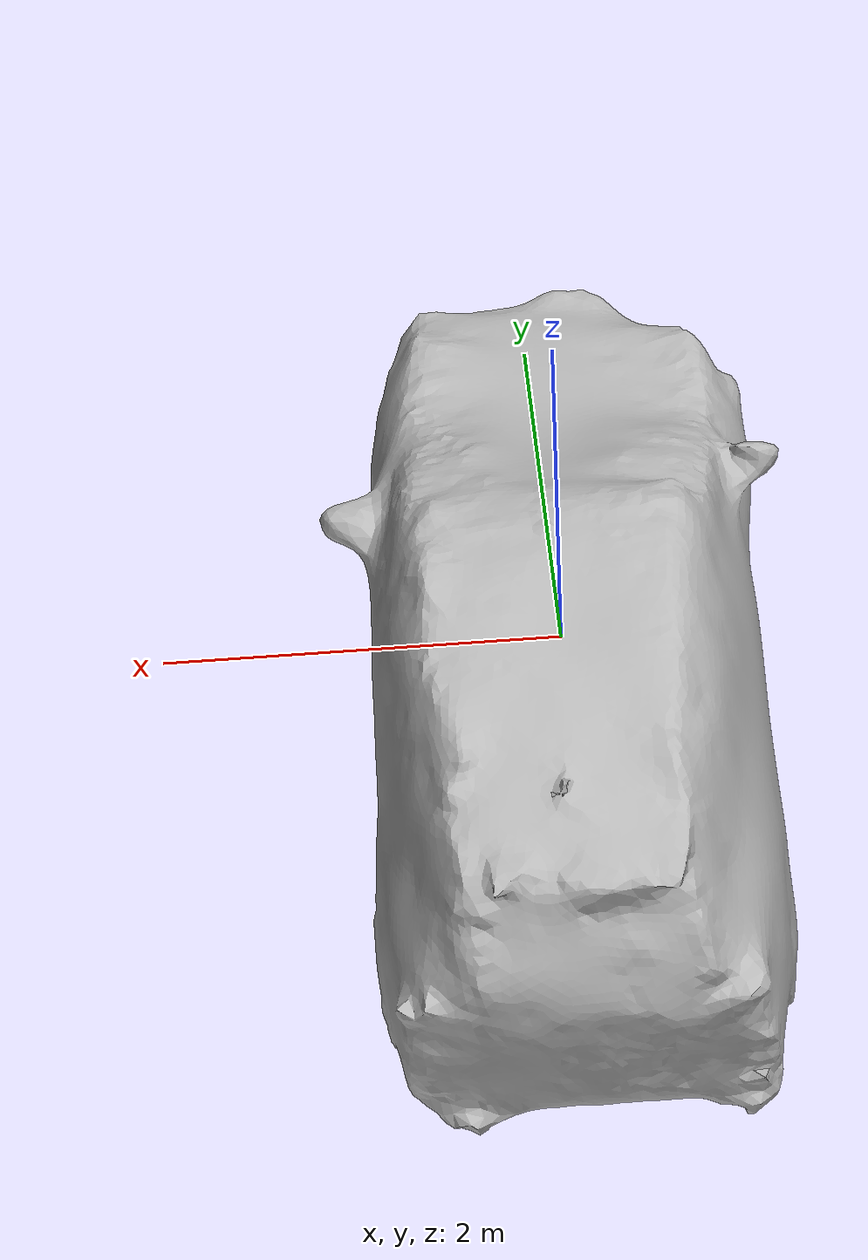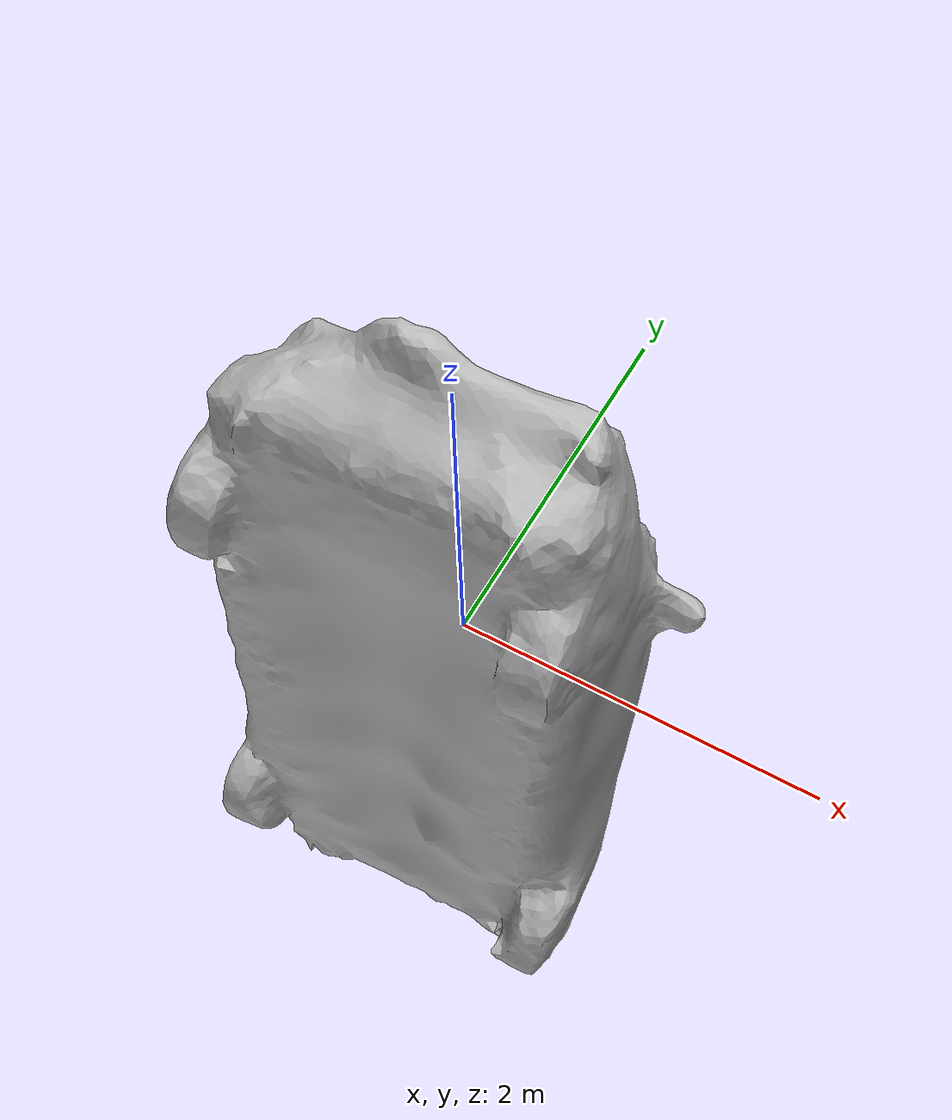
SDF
<?xml version="1.0" ?>
<sdf version="1.6">
  <model name="kare-redcar">
    <static>true</static>
    <link name="link">
      <collision name="collision">
        <geometry>
          <mesh>
            <scale>5 5 5</scale>
            <uri>model://kare-redcar/meshes/kare-redcar.obj</uri>
          </mesh>
        </geometry>
      </collision>
      <visual name="visual">
        <geometry>
          <mesh>
            <scale>5 5 5</scale>
            <uri>model://kare-redcar/meshes/kare-redcar.obj</uri>
          </mesh>
        </geometry>
      </visual>
    </link>
  </model>
</sdf>
